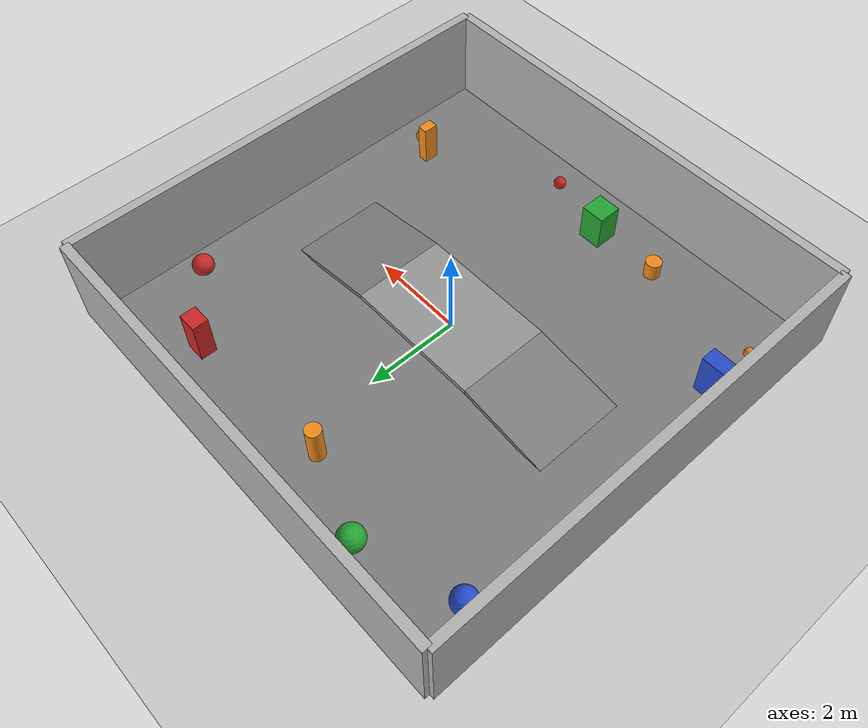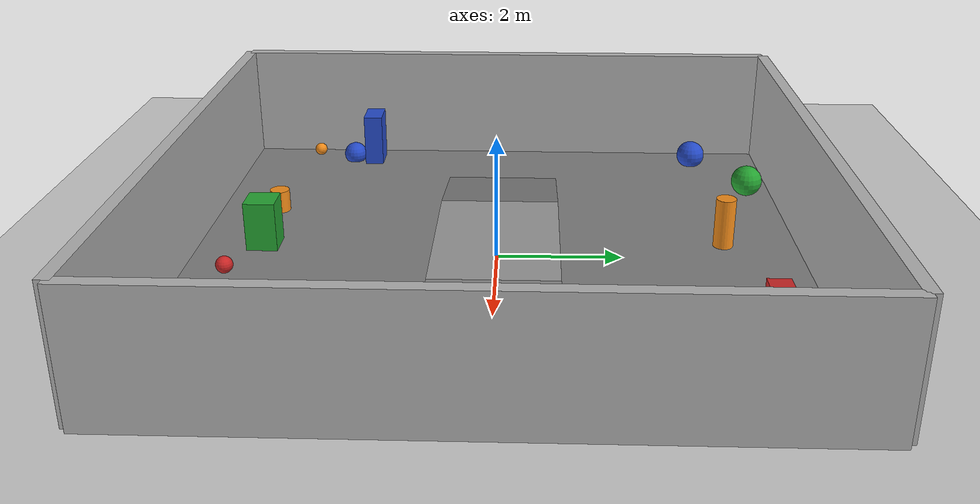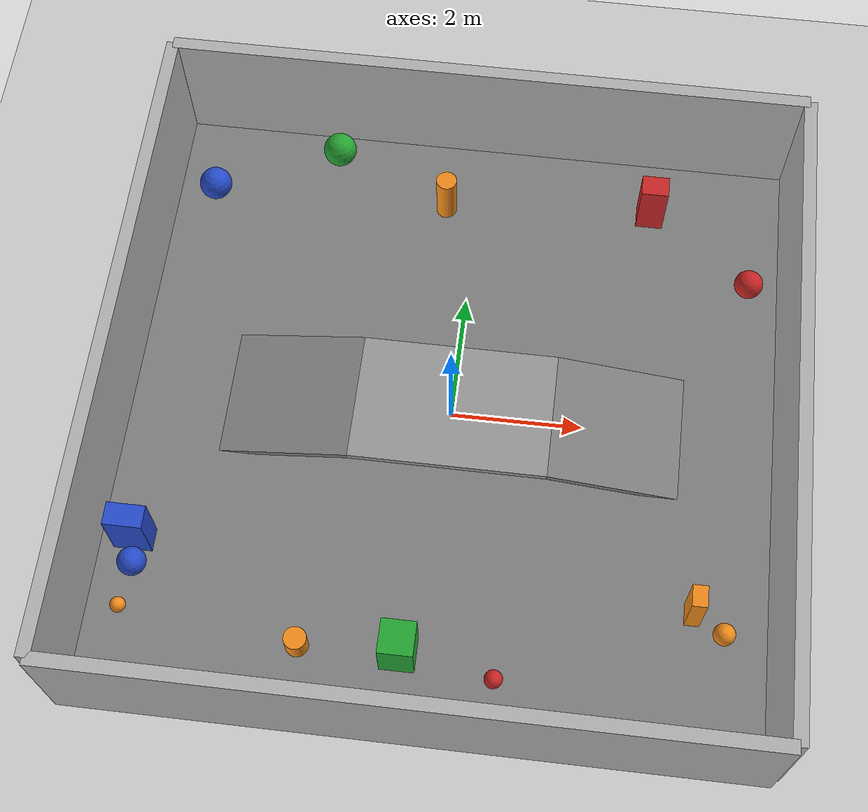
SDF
<sdf version='1.9'>
  <world name='uneven_terrain'>
    <physics name='1ms' type='ode'>
      <max_step_size>0.001</max_step_size>
      <real_time_factor>1</real_time_factor>
      <real_time_update_rate>1000</real_time_update_rate>
    </physics>
    <plugin name='ignition::gazebo::systems::Physics' filename='libignition-gazebo-physics-system.so'/>
    <plugin name='ignition::gazebo::systems::UserCommands' filename='libignition-gazebo-user-commands-system.so'/>
    <plugin name='ignition::gazebo::systems::SceneBroadcaster' filename='libignition-gazebo-scene-broadcaster-system.so'/>
    <plugin name='ignition::gazebo::systems::Sensors' filename='libignition-gazebo-sensors-system.so'/>
    <plugin name='ignition::gazebo::systems::Imu' filename='libignition-gazebo-imu-system.so'/>
    <gravity>0 0 -9.8</gravity>
    <magnetic_field>6e-06 2.3e-05 -4.2e-05</magnetic_field>
    <atmosphere type='adiabatic'/>
    <scene>
      <ambient>0.4 0.4 0.4 1</ambient>
      <background>0.7 0.7 0.7 1</background>
      <shadows>true</shadows>
    </scene>
    <model name='ground_mesh_model'>
      <static>true</static>
      <link name='link'>
        <collision name='collision'>
          <geometry>
            <box>
              <size>10 10 0.1</size>
            </box>
          </geometry>
        </collision>
        <visual name='visual'>
          <geometry>
            <box>
              <size>10 10 0.1</size>
            </box>
          </geometry>
          <material>
            <ambient>0.5 0.5 0.5 1</ambient>
            <diffuse>0.5 0.5 0.5 1</diffuse>
          </material>
        </visual>
      </link>
      <pose>0 0 -0.05 0 0 0</pose>
    </model>
    <model name='ground_plane'>
      <static>true</static>
      <link name='link'>
        <collision name='collision'>
          <geometry>
            <plane>
              <normal>0 0 1</normal>
              <size>100 100</size>
            </plane>
          </geometry>
          <surface>
            <friction>
              <ode>
                <mu>100</mu>
                <mu2>50</mu2>
              </ode>
            </friction>
            <bounce/>
            <contact/>
          </surface>
        </collision>
        <visual name='visual'>
          <geometry>
            <plane>
              <normal>0 0 1</normal>
              <size>10 10</size>
            </plane>
          </geometry>
          <material>
            <ambient>0.8 0.8 0.8 1</ambient>
            <diffuse>0.8 0.8 0.8 1</diffuse>
            <specular>0.8 0.8 0.8 1</specular>
          </material>
        </visual>
        <pose>0 0 0 0 -0 0</pose>
        <inertial>
          <pose>0 0 0 0 -0 0</pose>
          <mass>1</mass>
          <inertia>
            <ixx>1</ixx>
            <ixy>0</ixy>
            <ixz>0</ixz>
            <iyy>1</iyy>
            <iyz>0</iyz>
            <izz>1</izz>
          </inertia>
        </inertial>
        <enable_wind>false</enable_wind>
      </link>
      <pose>0 0 0 0 -0 0</pose>
      <self_collide>false</self_collide>
    </model>
    <model name='wall_north'>
      <static>true</static>
      <pose>0 5 1 0 -0 0</pose>
      <link name='link'>
        <collision name='collision'>
          <geometry>
            <box>
              <size>10 0.2 2</size>
            </box>
          </geometry>
          <surface>
            <friction>
              <ode/>
            </friction>
            <bounce/>
            <contact/>
          </surface>
        </collision>
        <visual name='visual'>
          <geometry>
            <box>
              <size>10 0.2 2</size>
            </box>
          </geometry>
          <material>
            <ambient>0.7 0.7 0.7 1</ambient>
          </material>
        </visual>
        <pose>0 0 0 0 -0 0</pose>
        <inertial>
          <pose>0 0 0 0 -0 0</pose>
          <mass>1</mass>
          <inertia>
            <ixx>1</ixx>
            <ixy>0</ixy>
            <ixz>0</ixz>
            <iyy>1</iyy>
            <iyz>0</iyz>
            <izz>1</izz>
          </inertia>
        </inertial>
        <enable_wind>false</enable_wind>
      </link>
      <self_collide>false</self_collide>
    </model>
    <model name='wall_south'>
      <static>true</static>
      <pose>0 -5 1 0 -0 0</pose>
      <link name='link'>
        <collision name='collision'>
          <geometry>
            <box>
              <size>10 0.2 2</size>
            </box>
          </geometry>
          <surface>
            <friction>
              <ode/>
            </friction>
            <bounce/>
            <contact/>
          </surface>
        </collision>
        <visual name='visual'>
          <geometry>
            <box>
              <size>10 0.2 2</size>
            </box>
          </geometry>
          <material>
            <ambient>0.7 0.7 0.7 1</ambient>
          </material>
        </visual>
        <pose>0 0 0 0 -0 0</pose>
        <inertial>
          <pose>0 0 0 0 -0 0</pose>
          <mass>1</mass>
          <inertia>
            <ixx>1</ixx>
            <ixy>0</ixy>
            <ixz>0</ixz>
            <iyy>1</iyy>
            <iyz>0</iyz>
            <izz>1</izz>
          </inertia>
        </inertial>
        <enable_wind>false</enable_wind>
      </link>
      <self_collide>false</self_collide>
    </model>
    <model name='wall_east'>
      <static>true</static>
      <pose>5 0 1 0 -0 0</pose>
      <link name='link'>
        <collision name='collision'>
          <geometry>
            <box>
              <size>0.2 10 2</size>
            </box>
          </geometry>
          <surface>
            <friction>
              <ode/>
            </friction>
            <bounce/>
            <contact/>
          </surface>
        </collision>
        <visual name='visual'>
          <geometry>
            <box>
              <size>0.2 10 2</size>
            </box>
          </geometry>
          <material>
            <ambient>0.7 0.7 0.7 1</ambient>
          </material>
        </visual>
        <pose>0 0 0 0 -0 0</pose>
        <inertial>
          <pose>0 0 0 0 -0 0</pose>
          <mass>1</mass>
          <inertia>
            <ixx>1</ixx>
            <ixy>0</ixy>
            <ixz>0</ixz>
            <iyy>1</iyy>
            <iyz>0</iyz>
            <izz>1</izz>
          </inertia>
        </inertial>
        <enable_wind>false</enable_wind>
      </link>
      <self_collide>false</self_collide>
    </model>
    <model name='wall_west'>
      <static>true</static>
      <pose>-5 0 1 0 -0 0</pose>
      <link name='link'>
        <collision name='collision'>
          <geometry>
            <box>
              <size>0.2 10 2</size>
            </box>
          </geometry>
          <surface>
            <friction>
              <ode/>
            </friction>
            <bounce/>
            <contact/>
          </surface>
        </collision>
        <visual name='visual'>
          <geometry>
            <box>
              <size>0.2 10 2</size>
            </box>
          </geometry>
          <material>
            <ambient>0.7 0.7 0.7 1</ambient>
          </material>
        </visual>
        <pose>0 0 0 0 -0 0</pose>
        <inertial>
          <pose>0 0 0 0 -0 0</pose>
          <mass>1</mass>
          <inertia>
            <ixx>1</ixx>
            <ixy>0</ixy>
            <ixz>0</ixz>
            <iyy>1</iyy>
            <iyz>0</iyz>
            <izz>1</izz>
          </inertia>
        </inertial>
        <enable_wind>false</enable_wind>
      </link>
      <self_collide>false</self_collide>
    </model>
    <model name='ramp_1'>
      <static>true</static>
      <pose>-2.440250 0.000000 0.121538 0 -0.17 0</pose>
      <link name='link'>
        <collision name='collision'>
          <geometry>
            <box>
              <size>2 2 0.1</size>
            </box>
          </geometry>
          <surface>
            <friction>
              <ode/>
            </friction>
            <bounce/>
            <contact/>
          </surface>
        </collision>
        <visual name='visual'>
          <geometry>
            <box>
              <size>2 2 0.1</size>
            </box>
          </geometry>
          <material>
            <ambient>0.5 0.5 0.5 1</ambient>
          </material>
        </visual>
        <pose>0 0 0 0 -0 0</pose>
        <inertial>
          <pose>0 0 0 0 -0 0</pose>
          <mass>1</mass>
          <inertia>
            <ixx>1</ixx>
            <ixy>0</ixy>
            <ixz>0</ixz>
            <iyy>1</iyy>
            <iyz>0</iyz>
            <izz>1</izz>
          </inertia>
        </inertial>
        <enable_wind>false</enable_wind>
      </link>
      <self_collide>false</self_collide>
    </model>
    <model name='platform_1'>
      <static>true</static>
      <pose>0.036876 0 0.29 0 -0 0</pose>
      <link name='link'>
        <collision name='collision'>
          <geometry>
            <box>
              <size>3 2 0.1</size>
            </box>
          </geometry>
          <surface>
            <friction>
              <ode/>
            </friction>
            <bounce/>
            <contact/>
          </surface>
        </collision>
        <visual name='visual'>
          <geometry>
            <box>
              <size>3 2 0.1</size>
            </box>
          </geometry>
          <material>
            <ambient>0.6 0.6 0.6 1</ambient>
          </material>
        </visual>
        <pose>0 0 0 0 -0 0</pose>
        <inertial>
          <pose>0 0 0 0 -0 0</pose>
          <mass>1</mass>
          <inertia>
            <ixx>1</ixx>
            <ixy>0</ixy>
            <ixz>0</ixz>
            <iyy>1</iyy>
            <iyz>0</iyz>
            <izz>1</izz>
          </inertia>
        </inertial>
        <enable_wind>false</enable_wind>
      </link>
      <self_collide>false</self_collide>
    </model>
    <model name='ramp_2'>
      <static>true</static>
      <pose>2.514002 0.000000 0.121538 0 0.17 0</pose>
      <link name='link'>
        <collision name='collision'>
          <geometry>
            <box>
              <size>2 2 0.1</size>
            </box>
          </geometry>
          <surface>
            <friction>
              <ode/>
            </friction>
            <bounce/>
            <contact/>
          </surface>
        </collision>
        <visual name='visual'>
          <geometry>
            <box>
              <size>2 2 0.1</size>
            </box>
          </geometry>
          <material>
            <ambient>0.5 0.5 0.5 1</ambient>
          </material>
        </visual>
        <pose>0 0 0 0 -0 0</pose>
        <inertial>
          <pose>0 0 0 0 -0 0</pose>
          <mass>1</mass>
          <inertia>
            <ixx>1</ixx>
            <ixy>0</ixy>
            <ixz>0</ixz>
            <iyy>1</iyy>
            <iyz>0</iyz>
            <izz>1</izz>
          </inertia>
        </inertial>
        <enable_wind>false</enable_wind>
      </link>
      <self_collide>false</self_collide>
    </model>
    <model name='obstacle_0_box'>
      <pose>-0.316374 -3.82169 0.406707 0 -0 0</pose>
      <static>true</static>
      <link name='link'>
        <collision name='collision'>
          <geometry>
            <box>
              <size>0.509259 0.50741 0.813414</size>
            </box>
          </geometry>
          <surface>
            <friction>
              <ode/>
            </friction>
            <bounce/>
            <contact/>
          </surface>
        </collision>
        <visual name='visual'>
          <geometry>
            <box>
              <size>0.509259 0.50741 0.813414</size>
            </box>
          </geometry>
          <material>
            <script>
              <uri>file://media/materials/scripts/gazebo.material</uri>
              <name>Gazebo/Green</name>
            </script>
          </material>
        </visual>
        <pose>0 0 0 0 -0 0</pose>
        <inertial>
          <pose>0 0 0 0 -0 0</pose>
          <mass>1</mass>
          <inertia>
            <ixx>1</ixx>
            <ixy>0</ixy>
            <ixz>0</ixz>
            <iyy>1</iyy>
            <iyz>0</iyz>
            <izz>1</izz>
          </inertia>
        </inertial>
        <enable_wind>false</enable_wind>
      </link>
      <self_collide>false</self_collide>
    </model>
    <model name='obstacle_1_sphere'>
      <pose>4.43221 2.7586 0.126696 0 -0 0</pose>
      <static>true</static>
      <link name='link'>
        <collision name='collision'>
          <geometry>
            <sphere>
              <radius>0.22672937078829539</radius>
            </sphere>
          </geometry>
          <surface>
            <friction>
              <ode/>
            </friction>
            <bounce/>
            <contact/>
          </surface>
        </collision>
        <visual name='visual'>
          <geometry>
            <sphere>
              <radius>0.22672937078829539</radius>
            </sphere>
          </geometry>
          <material>
            <script>
              <uri>file://media/materials/scripts/gazebo.material</uri>
              <name>Gazebo/Red</name>
            </script>
          </material>
        </visual>
        <pose>0 0 0 0 -0 0</pose>
        <inertial>
          <pose>0 0 0 0 -0 0</pose>
          <mass>1</mass>
          <inertia>
            <ixx>1</ixx>
            <ixy>0</ixy>
            <ixz>0</ixz>
            <iyy>1</iyy>
            <iyz>0</iyz>
            <izz>1</izz>
          </inertia>
        </inertial>
        <enable_wind>false</enable_wind>
      </link>
      <self_collide>false</self_collide>
    </model>
    <model name='obstacle_5_cylinder'>
      <pose>-0.50991 3.69079 0.417246 0 -0 0</pose>
      <static>true</static>
      <link name='link'>
        <collision name='collision'>
          <geometry>
            <cylinder>
              <radius>0.16293335119398417</radius>
              <length>0.83449224172583136</length>
            </cylinder>
          </geometry>
          <surface>
            <friction>
              <ode/>
            </friction>
            <bounce/>
            <contact/>
          </surface>
        </collision>
        <visual name='visual'>
          <geometry>
            <cylinder>
              <radius>0.16293335119398417</radius>
              <length>0.83449224172583136</length>
            </cylinder>
          </geometry>
          <material>
            <script>
              <uri>file://media/materials/scripts/gazebo.material</uri>
              <name>Gazebo/Orange</name>
            </script>
          </material>
        </visual>
        <pose>0 0 0 0 -0 0</pose>
        <inertial>
          <pose>0 0 0 0 -0 0</pose>
          <mass>1</mass>
          <inertia>
            <ixx>1</ixx>
            <ixy>0</ixy>
            <ixz>0</ixz>
            <iyy>1</iyy>
            <iyz>0</iyz>
            <izz>1</izz>
          </inertia>
        </inertial>
        <enable_wind>false</enable_wind>
      </link>
      <self_collide>false</self_collide>
    </model>
    <model name='obstacle_6_sphere'>
      <pose>-4.31378 3.63662 0.188494 0 -0 0</pose>
      <static>true</static>
      <link name='link'>
        <collision name='collision'>
          <geometry>
            <sphere>
              <radius>0.25960404889656696</radius>
            </sphere>
          </geometry>
          <surface>
            <friction>
              <ode/>
            </friction>
            <bounce/>
            <contact/>
          </surface>
        </collision>
        <visual name='visual'>
          <geometry>
            <sphere>
              <radius>0.25960404889656696</radius>
            </sphere>
          </geometry>
          <material>
            <script>
              <uri>file://media/materials/scripts/gazebo.material</uri>
              <name>Gazebo/Blue</name>
            </script>
          </material>
        </visual>
        <pose>0 0 0 0 -0 0</pose>
        <inertial>
          <pose>0 0 0 0 -0 0</pose>
          <mass>1</mass>
          <inertia>
            <ixx>1</ixx>
            <ixy>0</ixy>
            <ixz>0</ixz>
            <iyy>1</iyy>
            <iyz>0</iyz>
            <izz>1</izz>
          </inertia>
        </inertial>
        <enable_wind>false</enable_wind>
      </link>
      <self_collide>false</self_collide>
    </model>
    <model name='obstacle_7_box'>
      <pose>3.80496 -2.77005 0.443938 0 -0 0</pose>
      <static>true</static>
      <link name='link'>
        <collision name='collision'>
          <geometry>
            <box>
              <size>0.222618 0.317194 0.887876</size>
            </box>
          </geometry>
          <surface>
            <friction>
              <ode/>
            </friction>
            <bounce/>
            <contact/>
          </surface>
        </collision>
        <visual name='visual'>
          <geometry>
            <box>
              <size>0.222618 0.317194 0.887876</size>
            </box>
          </geometry>
          <material>
            <script>
              <uri>file://media/materials/scripts/gazebo.material</uri>
              <name>Gazebo/Orange</name>
            </script>
          </material>
        </visual>
        <pose>0 0 0 0 -0 0</pose>
        <inertial>
          <pose>0 0 0 0 -0 0</pose>
          <mass>1</mass>
          <inertia>
            <ixx>1</ixx>
            <ixy>0</ixy>
            <ixz>0</ixz>
            <iyy>1</iyy>
            <iyz>0</iyz>
            <izz>1</izz>
          </inertia>
        </inertial>
        <enable_wind>false</enable_wind>
      </link>
      <self_collide>false</self_collide>
    </model>
    <model name='obstacle_10_sphere'>
      <pose>1.06337 -4.1132 0.29399 0 -0 0</pose>
      <static>true</static>
      <link name='link'>
        <collision name='collision'>
          <geometry>
            <sphere>
              <radius>0.13375255100409827</radius>
            </sphere>
          </geometry>
          <surface>
            <friction>
              <ode/>
            </friction>
            <bounce/>
            <contact/>
          </surface>
        </collision>
        <visual name='visual'>
          <geometry>
            <sphere>
              <radius>0.13375255100409827</radius>
            </sphere>
          </geometry>
          <material>
            <script>
              <uri>file://media/materials/scripts/gazebo.material</uri>
              <name>Gazebo/Red</name>
            </script>
          </material>
        </visual>
        <pose>0 0 0 0 -0 0</pose>
        <inertial>
          <pose>0 0 0 0 -0 0</pose>
          <mass>1</mass>
          <inertia>
            <ixx>1</ixx>
            <ixy>0</ixy>
            <ixz>0</ixz>
            <iyy>1</iyy>
            <iyz>0</iyz>
            <izz>1</izz>
          </inertia>
        </inertial>
        <enable_wind>false</enable_wind>
      </link>
      <self_collide>false</self_collide>
    </model>
    <model name='obstacle_11_sphere'>
      <pose>-4.39439 -3.62256 0.194418 0 -0 0</pose>
      <static>true</static>
      <link name='link'>
        <collision name='collision'>
          <geometry>
            <sphere>
              <radius>0.11515317503726741</radius>
            </sphere>
          </geometry>
          <surface>
            <friction>
              <ode/>
            </friction>
            <bounce/>
            <contact/>
          </surface>
        </collision>
        <visual name='visual'>
          <geometry>
            <sphere>
              <radius>0.11515317503726741</radius>
            </sphere>
          </geometry>
          <material>
            <script>
              <uri>file://media/materials/scripts/gazebo.material</uri>
              <name>Gazebo/Orange</name>
            </script>
          </material>
        </visual>
        <pose>0 0 0 0 -0 0</pose>
        <inertial>
          <pose>0 0 0 0 -0 0</pose>
          <mass>1</mass>
          <inertia>
            <ixx>1</ixx>
            <ixy>0</ixy>
            <ixz>0</ixz>
            <iyy>1</iyy>
            <iyz>0</iyz>
            <izz>1</izz>
          </inertia>
        </inertial>
        <enable_wind>false</enable_wind>
      </link>
      <self_collide>false</self_collide>
    </model>
    <model name='obstacle_16_cylinder'>
      <pose>-1.77187 -3.87141 0.190628 0 -0 0</pose>
      <static>true</static>
      <link name='link'>
        <collision name='collision'>
          <geometry>
            <cylinder>
              <radius>0.16777022098468791</radius>
              <length>0.381256938563938</length>
            </cylinder>
          </geometry>
          <surface>
            <friction>
              <ode/>
            </friction>
            <bounce/>
            <contact/>
          </surface>
        </collision>
        <visual name='visual'>
          <geometry>
            <cylinder>
              <radius>0.16777022098468791</radius>
              <length>0.381256938563938</length>
            </cylinder>
          </geometry>
          <material>
            <script>
              <uri>file://media/materials/scripts/gazebo.material</uri>
              <name>Gazebo/Orange</name>
            </script>
          </material>
        </visual>
        <pose>0 0 0 0 -0 0</pose>
        <inertial>
          <pose>0 0 0 0 -0 0</pose>
          <mass>1</mass>
          <inertia>
            <ixx>1</ixx>
            <ixy>0</ixy>
            <ixz>0</ixz>
            <iyy>1</iyy>
            <iyz>0</iyz>
            <izz>1</izz>
          </inertia>
        </inertial>
        <enable_wind>false</enable_wind>
      </link>
      <self_collide>false</self_collide>
    </model>
    <model name='obstacle_21_box'>
      <pose>2.7954 3.8916 0.477434 0 -0 0</pose>
      <static>true</static>
      <link name='link'>
        <collision name='collision'>
          <geometry>
            <box>
              <size>0.424196 0.339412 0.954868</size>
            </box>
          </geometry>
          <surface>
            <friction>
              <ode/>
            </friction>
            <bounce/>
            <contact/>
          </surface>
        </collision>
        <visual name='visual'>
          <geometry>
            <box>
              <size>0.424196 0.339412 0.954868</size>
            </box>
          </geometry>
          <material>
            <script>
              <uri>file://media/materials/scripts/gazebo.material</uri>
              <name>Gazebo/Red</name>
            </script>
          </material>
        </visual>
        <pose>0 0 0 0 -0 0</pose>
        <inertial>
          <pose>0 0 0 0 -0 0</pose>
          <mass>1</mass>
          <inertia>
            <ixx>1</ixx>
            <ixy>0</ixy>
            <ixz>0</ixz>
            <iyy>1</iyy>
            <iyz>0</iyz>
            <izz>1</izz>
          </inertia>
        </inertial>
        <enable_wind>false</enable_wind>
      </link>
      <self_collide>false</self_collide>
    </model>
    <model name='obstacle_23_sphere'>
      <pose>-2.34555 4.36331 0.427272 0 -0 0</pose>
      <static>true</static>
      <link name='link'>
        <collision name='collision'>
          <geometry>
            <sphere>
              <radius>0.26701648314304105</radius>
            </sphere>
          </geometry>
          <surface>
            <friction>
              <ode/>
            </friction>
            <bounce/>
            <contact/>
          </surface>
        </collision>
        <visual name='visual'>
          <geometry>
            <sphere>
              <radius>0.26701648314304105</radius>
            </sphere>
          </geometry>
          <material>
            <script>
              <uri>file://media/materials/scripts/gazebo.material</uri>
              <name>Gazebo/Green</name>
            </script>
          </material>
        </visual>
        <pose>0 0 0 0 -0 0</pose>
        <inertial>
          <pose>0 0 0 0 -0 0</pose>
          <mass>1</mass>
          <inertia>
            <ixx>1</ixx>
            <ixy>0</ixy>
            <ixz>0</ixz>
            <iyy>1</iyy>
            <iyz>0</iyz>
            <izz>1</izz>
          </inertia>
        </inertial>
        <enable_wind>false</enable_wind>
      </link>
      <self_collide>false</self_collide>
    </model>
    <model name='obstacle_24_sphere'>
      <pose>-4.35087 -2.93205 0.127098 0 -0 0</pose>
      <static>true</static>
      <link name='link'>
        <collision name='collision'>
          <geometry>
            <sphere>
              <radius>0.2149083668156534</radius>
            </sphere>
          </geometry>
          <surface>
            <friction>
              <ode/>
            </friction>
            <bounce/>
            <contact/>
          </surface>
        </collision>
        <visual name='visual'>
          <geometry>
            <sphere>
              <radius>0.2149083668156534</radius>
            </sphere>
          </geometry>
          <material>
            <script>
              <uri>file://media/materials/scripts/gazebo.material</uri>
              <name>Gazebo/Blue</name>
            </script>
          </material>
        </visual>
        <pose>0 0 0 0 -0 0</pose>
        <inertial>
          <pose>0 0 0 0 -0 0</pose>
          <mass>1</mass>
          <inertia>
            <ixx>1</ixx>
            <ixy>0</ixy>
            <ixz>0</ixz>
            <iyy>1</iyy>
            <iyz>0</iyz>
            <izz>1</izz>
          </inertia>
        </inertial>
        <enable_wind>false</enable_wind>
      </link>
      <self_collide>false</self_collide>
    </model>
    <model name='obstacle_25_sphere'>
      <pose>4.2658 -3.0401 0.120198 0 -0 0</pose>
      <static>true</static>
      <link name='link'>
        <collision name='collision'>
          <geometry>
            <sphere>
              <radius>0.16335643950268666</radius>
            </sphere>
          </geometry>
          <surface>
            <friction>
              <ode/>
            </friction>
            <bounce/>
            <contact/>
          </surface>
        </collision>
        <visual name='visual'>
          <geometry>
            <sphere>
              <radius>0.16335643950268666</radius>
            </sphere>
          </geometry>
          <material>
            <script>
              <uri>file://media/materials/scripts/gazebo.material</uri>
              <name>Gazebo/Orange</name>
            </script>
          </material>
        </visual>
        <pose>0 0 0 0 -0 0</pose>
        <inertial>
          <pose>0 0 0 0 -0 0</pose>
          <mass>1</mass>
          <inertia>
            <ixx>1</ixx>
            <ixy>0</ixy>
            <ixz>0</ixz>
            <iyy>1</iyy>
            <iyz>0</iyz>
            <izz>1</izz>
          </inertia>
        </inertial>
        <enable_wind>false</enable_wind>
      </link>
      <self_collide>false</self_collide>
    </model>
    <model name='obstacle_27_box'>
      <pose>-4.39643 -2.53455 0.47067 0 -0 0</pose>
      <static>true</static>
      <link name='link'>
        <collision name='collision'>
          <geometry>
            <box>
              <size>0.57333 0.341095 0.94134</size>
            </box>
          </geometry>
          <surface>
            <friction>
              <ode/>
            </friction>
            <bounce/>
            <contact/>
          </surface>
        </collision>
        <visual name='visual'>
          <geometry>
            <box>
              <size>0.57333 0.341095 0.94134</size>
            </box>
          </geometry>
          <material>
            <script>
              <uri>file://media/materials/scripts/gazebo.material</uri>
              <name>Gazebo/Blue</name>
            </script>
          </material>
        </visual>
        <pose>0 0 0 0 -0 0</pose>
        <inertial>
          <pose>0 0 0 0 -0 0</pose>
          <mass>1</mass>
          <inertia>
            <ixx>1</ixx>
            <ixy>0</ixy>
            <ixz>0</ixz>
            <iyy>1</iyy>
            <iyz>0</iyz>
            <izz>1</izz>
          </inertia>
        </inertial>
        <enable_wind>false</enable_wind>
      </link>
      <self_collide>false</self_collide>
    </model>
    <light name='sun' type='directional'>
      <pose>0 0 10 0 -0 0</pose>
      <cast_shadows>true</cast_shadows>
      <intensity>1</intensity>
      <direction>-0.5 0.1 -0.9</direction>
      <diffuse>0.8 0.8 0.8 1</diffuse>
      <specular>0.2 0.2 0.2 1</specular>
      <attenuation>
        <range>1000</range>
        <linear>0.01</linear>
        <constant>0.90000000000000002</constant>
        <quadratic>0.001</quadratic>
      </attenuation>
      <spot>
        <inner_angle>0</inner_angle>
        <outer_angle>0</outer_angle>
        <falloff>0</falloff>
      </spot>
    </light>
  </world>
</sdf>
